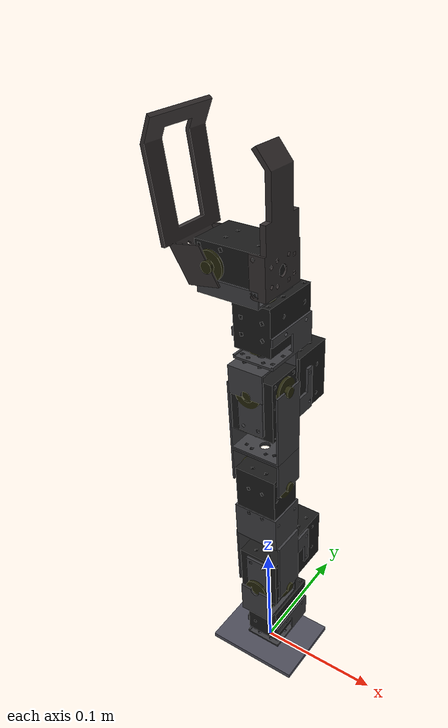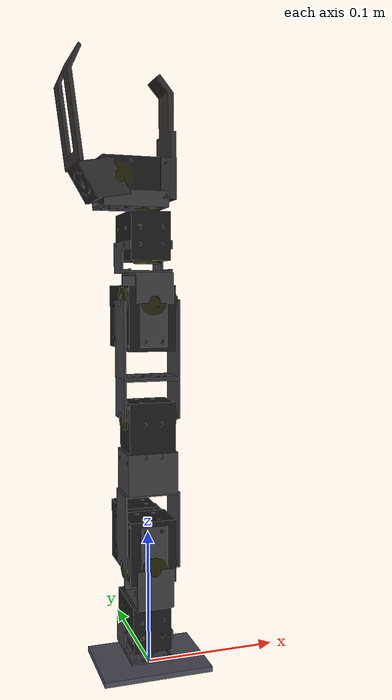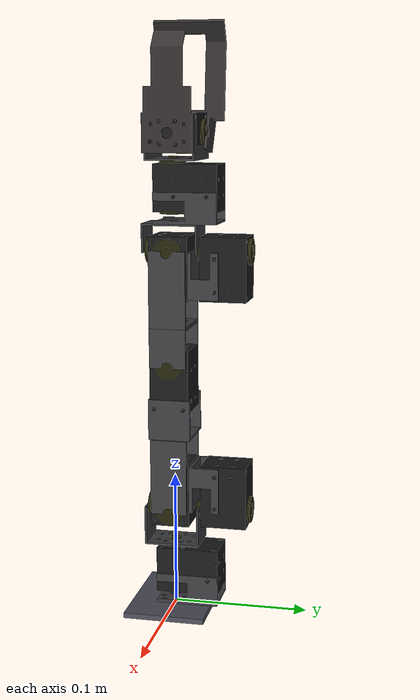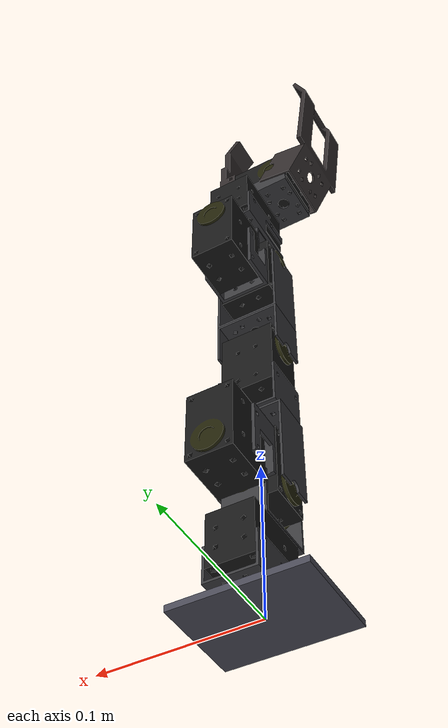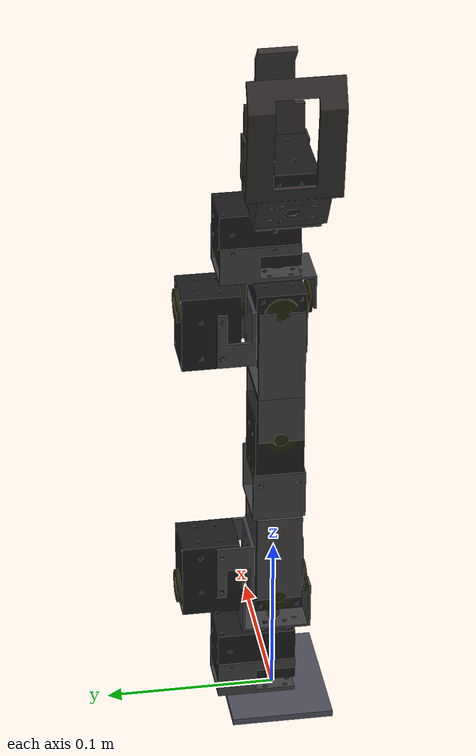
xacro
<?xml version="1.0"?>
<!-- XML namespaces -->
<robot xmlns:xi="http://www.w3.org/2001/XInclude"
       xmlns:gazebo="http://playerstage.sourceforge.net/gazebo/xmlschema/#gz"
       xmlns:model="http://playerstage.sourceforge.net/gazebo/xmlschema/#model"
       xmlns:sensor="http://playerstage.sourceforge.net/gazebo/xmlschema/#sensor"
       xmlns:body="http://playerstage.sourceforge.net/gazebo/xmlschema/#body"
       xmlns:geom="http://playerstage.sourceforge.net/gazebo/xmlschema/#geom"
       xmlns:joint="http://playerstage.sourceforge.net/gazebo/xmlschema/#joint"
       xmlns:interface="http://playerstage.sourceforge.net/gazebo/xmlschema/#interface"
       xmlns:rendering="http://playerstage.sourceforge.net/gazebo/xmlschema/#rendering"
       xmlns:renderable="http://playerstage.sourceforge.net/gazebo/xmlschema/#renderable"
       xmlns:controller="http://playerstage.sourceforge.net/gazebo/xmlschema/#controller"
       xmlns:physics="http://playerstage.sourceforge.net/gazebo/xmlschema/#physics"
       xmlns:xacro="http://ros.org/wiki/xacro"
       name="FIXED_ARM" >
  <xacro:include filename="$(find robot_assembler)/gazebo/gazebo_plugins.xacro" />
  <xacro:include filename="$(find robot_assembler)/sample/FIXED_ARM.urdf" />
</robot>

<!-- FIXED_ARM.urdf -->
<!-- This file was generated by robot assembler -->
<robot name="FIXED_ARM"
       xmlns:xi="http://www.w3.org/2001/XInclude"
       xmlns:gazebo="http://playerstage.sourceforge.net/gazebo/xmlschema/#gz"
       xmlns:model="http://playerstage.sourceforge.net/gazebo/xmlschema/#model"
       xmlns:sensor="http://playerstage.sourceforge.net/gazebo/xmlschema/#sensor"
       xmlns:body="http://playerstage.sourceforge.net/gazebo/xmlschema/#body"
       xmlns:geom="http://playerstage.sourceforge.net/gazebo/xmlschema/#geom"
       xmlns:joint="http://playerstage.sourceforge.net/gazebo/xmlschema/#joint"
       xmlns:interface="http://playerstage.sourceforge.net/gazebo/xmlschema/#interface"
       xmlns:rendering="http://playerstage.sourceforge.net/gazebo/xmlschema/#rendering"
       xmlns:renderable="http://playerstage.sourceforge.net/gazebo/xmlschema/#renderable"
       xmlns:controller="http://playerstage.sourceforge.net/gazebo/xmlschema/#controller"
       xmlns:physics="http://playerstage.sourceforge.net/gazebo/xmlschema/#physics"
       xmlns:xacro="http://www.ros.org/wiki/xacro">
  <xacro:macro name="gazebo_link_reference" params="link_name mu1:=0.9 mu2:=0.9" >
    <gazebo reference="${link_name}">
      <mu1>${mu1}</mu1>
      <mu2>${mu2}</mu2>
    </gazebo>
  </xacro:macro>
  <xacro:macro name="gazebo_transmission" params="joint_name" >
    <transmission name="${joint_name}_trans">
      <type>transmission_interface/SimpleTransmission</type>
      <joint name="${joint_name}">
        <hardwareInterface>hardware_interface/VelocityJointInterface</hardwareInterface>
      </joint>
      <actuator name="${joint_name}_motor">
        <hardwareInterface>hardware_interface/VelocityJointInterface</hardwareInterface>
        <mechanicalReduction>1</mechanicalReduction>
      </actuator>
    </transmission>
  </xacro:macro>

  <xacro:gazebo_link_reference link_name="BASE" />
  <link name="BASE">
  <inertial>
     <mass value="100.12"/>
     <origin rpy="0 0 0" xyz="-1.443271e-19 1.438274e-05 0.002031"/>
     <inertia ixx="10.0001" ixy="1.731926e-19" ixz="4.433066e-19" iyy="10.0001" iyz="-3.739513e-05" izz="10.0"/>
  </inertial>
  <visual>
     <origin xyz="0.000000 0.000000 0.000000" rpy="0.00000000 -0.00000000 0.00000000"/>
     <geometry>
     <mesh filename="package://robot_assembler/meshes/foot-plate.dae" scale="1.000000 1.000000 1.000000"/>
     </geometry>
  </visual>
  <collision>
     <origin xyz="0.000000 0.000000 0.000000" rpy="0.00000000 -0.00000000 0.00000000"/>
     <geometry>
     <mesh filename="package://robot_assembler/meshes/foot-plate.dae" scale="1.000000 1.000000 1.000000"/>
     </geometry>
  </collision>
  <visual>
     <origin xyz="0.000000 0.000000 0.004000" rpy="3.14159265 -0.00000000 0.00000000"/>
     <geometry>
     <mesh filename="package://robot_assembler/meshes/fr12_s103_a.dae" scale="1.000000 1.000000 1.000000"/>
     </geometry>
  </visual>
  <collision>
     <origin xyz="0.000000 0.000000 0.004000" rpy="3.14159265 -0.00000000 0.00000000"/>
     <geometry>
     <mesh filename="package://robot_assembler/meshes/fr12_s103_a.dae" scale="1.000000 1.000000 1.000000"/>
     </geometry>
  </collision>
  <visual>
     <origin xyz="-0.000000 0.000000 0.029500" rpy="0.00000000 0.00000000 -3.14159265"/>
     <geometry>
     <mesh filename="package://robot_assembler/meshes/xm430_dynamixel.dae" scale="1.000000 1.000000 1.000000"/>
     </geometry>
  </visual>
  <collision>
     <origin xyz="-0.000000 0.000000 0.029500" rpy="0.00000000 0.00000000 -3.14159265"/>
     <geometry>
     <mesh filename="package://robot_assembler/meshes/xm430_dynamixel.dae" scale="1.000000 1.000000 1.000000"/>
     </geometry>
  </collision>
  </link>
  <xacro:gazebo_link_reference link_name="LINK0" />
  <link name="LINK0">
  <inertial>
     <mass value="0.015"/>
     <origin rpy="0 0 0" xyz="-1.953584e-17 3.484759e-19 0.01455"/>
     <inertia ixx="1.969763e-06" ixy="-6.618208e-22" ixz="-1.400051e-21" iyy="3.159763e-06" iyz="6.539791e-23" izz="3.012500e-06"/>
  </inertial>
  <visual>
     <origin xyz="-0.000000 -0.000000 0.028000" rpy="-1.57079633 0.00000000 -1.57079633"/>
     <geometry>
     <mesh filename="package://robot_assembler/meshes/fr12_h101.dae" scale="1.000000 1.000000 1.000000"/>
     </geometry>
  </visual>
  <collision>
     <origin xyz="-0.000000 -0.000000 0.028000" rpy="-1.57079633 0.00000000 -1.57079633"/>
     <geometry>
     <mesh filename="package://robot_assembler/meshes/fr12_h101.dae" scale="1.000000 1.000000 1.000000"/>
     </geometry>
  </collision>
  </link>
  <xacro:gazebo_link_reference link_name="LINK1" />
  <link name="LINK1">
  <inertial>
     <mass value="0.228"/>
     <origin rpy="0 0 0" xyz="-0.000658 -0.012202 0.003807"/>
     <inertia ixx="0.000153" ixy="3.026316e-08" ixz="2.519013e-06" iyy="0.000136" iyz="-8.800526e-07" izz="6.231353e-05"/>
  </inertial>
  <visual>
     <origin xyz="-0.000000 -0.000000 -0.019000" rpy="0.00000000 -0.00000000 0.00000000"/>
     <geometry>
     <mesh filename="package://robot_assembler/meshes/xm430_dynamixel.dae" scale="1.000000 1.000000 1.000000"/>
     </geometry>
  </visual>
  <collision>
     <origin xyz="-0.000000 -0.000000 -0.019000" rpy="0.00000000 -0.00000000 0.00000000"/>
     <geometry>
     <mesh filename="package://robot_assembler/meshes/xm430_dynamixel.dae" scale="1.000000 1.000000 1.000000"/>
     </geometry>
  </collision>
  <visual>
     <origin xyz="-0.000000 -0.000000 -0.016000" rpy="1.57079633 0.00000000 0.00000000"/>
     <geometry>
     <mesh filename="package://robot_assembler/meshes/fr12_x102.dae" scale="1.000000 1.000000 1.000000"/>
     </geometry>
  </visual>
  <collision>
     <origin xyz="-0.000000 -0.000000 -0.016000" rpy="1.57079633 0.00000000 0.00000000"/>
     <geometry>
     <mesh filename="package://robot_assembler/meshes/fr12_x102.dae" scale="1.000000 1.000000 1.000000"/>
     </geometry>
  </collision>
  <visual>
     <origin xyz="-0.000000 0.000000 0.020600" rpy="-1.03831454 -1.57079633 1.03831454"/>
     <geometry>
     <mesh filename="package://robot_assembler/meshes/xm430_dynamixel.dae" scale="1.000000 1.000000 1.000000"/>
     </geometry>
  </visual>
  <collision>
     <origin xyz="-0.000000 0.000000 0.020600" rpy="-1.03831454 -1.57079633 1.03831454"/>
     <geometry>
     <mesh filename="package://robot_assembler/meshes/xm430_dynamixel.dae" scale="1.000000 1.000000 1.000000"/>
     </geometry>
  </collision>
  <visual>
     <origin xyz="-0.000000 0.000000 0.034850" rpy="1.57079633 -0.00000000 0.00000000"/>
     <geometry>
     <mesh filename="package://robot_assembler/meshes/hr12_f101.dae" scale="1.000000 1.000000 1.000000"/>
     </geometry>
  </visual>
  <collision>
     <origin xyz="-0.000000 0.000000 0.034850" rpy="1.57079633 -0.00000000 0.00000000"/>
     <geometry>
     <mesh filename="package://robot_assembler/meshes/hr12_f101.dae" scale="1.000000 1.000000 1.000000"/>
     </geometry>
  </collision>
  </link>
  <xacro:gazebo_link_reference link_name="LINK2" />
  <link name="LINK2">
  <inertial>
     <mass value="0.138"/>
     <origin rpy="0 0 0" xyz="-3.260870e-05 -0.084159 -0.017913"/>
     <inertia ixx="0.000131" ixy="6.371739e-08" ixz="-4.891304e-09" iyy="2.835168e-05" iyz="2.098587e-06" izz="0.000124"/>
  </inertial>
  <visual>
     <origin xyz="0.000000 0.000000 -0.019000" rpy="0.00000000 1.57079633 -3.14159265"/>
     <geometry>
     <mesh filename="package://robot_assembler/meshes/fr12_h103.dae" scale="1.000000 1.000000 1.000000"/>
     </geometry>
  </visual>
  <collision>
     <origin xyz="0.000000 0.000000 -0.019000" rpy="0.00000000 1.57079633 -3.14159265"/>
     <geometry>
     <mesh filename="package://robot_assembler/meshes/fr12_h103.dae" scale="1.000000 1.000000 1.000000"/>
     </geometry>
  </collision>
  <visual>
     <origin xyz="0.000000 -0.055000 -0.019000" rpy="-1.57079633 0.00000000 -0.00000000"/>
     <geometry>
     <mesh filename="package://robot_assembler/meshes/fr12_x103.dae" scale="1.000000 1.000000 1.000000"/>
     </geometry>
  </visual>
  <collision>
     <origin xyz="0.000000 -0.055000 -0.019000" rpy="-1.57079633 0.00000000 -0.00000000"/>
     <geometry>
     <mesh filename="package://robot_assembler/meshes/fr12_x103.dae" scale="1.000000 1.000000 1.000000"/>
     </geometry>
  </collision>
  <visual>
     <origin xyz="0.000000 -0.110150 -0.019000" rpy="-0.00000000 0.00000000 3.14159265"/>
     <geometry>
     <mesh filename="package://robot_assembler/meshes/xm430_dynamixel.dae" scale="1.000000 1.000000 1.000000"/>
     </geometry>
  </visual>
  <collision>
     <origin xyz="0.000000 -0.110150 -0.019000" rpy="-0.00000000 0.00000000 3.14159265"/>
     <geometry>
     <mesh filename="package://robot_assembler/meshes/xm430_dynamixel.dae" scale="1.000000 1.000000 1.000000"/>
     </geometry>
  </collision>
  </link>
  <xacro:gazebo_link_reference link_name="LINK3" />
  <link name="LINK3">
  <inertial>
     <mass value="0.035"/>
     <origin rpy="0 0 0" xyz="2.956365e-17 0.037793 -0.019"/>
     <inertia ixx="2.398520e-05" ixy="-2.377463e-20" ixz="-3.875419e-21" iyy="7.029167e-06" iyz="5.681579e-21" izz="2.676187e-05"/>
  </inertial>
  <visual>
     <origin xyz="0.000000 0.000000 -0.019000" rpy="0.07059318 1.57079633 0.07059318"/>
     <geometry>
     <mesh filename="package://robot_assembler/meshes/fr12_h101.dae" scale="1.000000 1.000000 1.000000"/>
     </geometry>
  </visual>
  <collision>
     <origin xyz="0.000000 0.000000 -0.019000" rpy="0.07059318 1.57079633 0.07059318"/>
     <geometry>
     <mesh filename="package://robot_assembler/meshes/fr12_h101.dae" scale="1.000000 1.000000 1.000000"/>
     </geometry>
  </collision>
  <visual>
     <origin xyz="0.000000 0.083000 -0.019000" rpy="2.87954722 1.57079633 -0.26204543"/>
     <geometry>
     <mesh filename="package://robot_assembler/meshes/fr12_h103.dae" scale="1.000000 1.000000 1.000000"/>
     </geometry>
  </visual>
  <collision>
     <origin xyz="0.000000 0.083000 -0.019000" rpy="2.87954722 1.57079633 -0.26204543"/>
     <geometry>
     <mesh filename="package://robot_assembler/meshes/fr12_h103.dae" scale="1.000000 1.000000 1.000000"/>
     </geometry>
  </collision>
  </link>
  <xacro:gazebo_link_reference link_name="LINK4" />
  <link name="LINK4">
  <inertial>
     <mass value="0.228"/>
     <origin rpy="0 0 0" xyz="0.016793 -0.012202 -0.018342"/>
     <inertia ixx="6.231353e-05" ixy="8.800526e-07" ixz="2.519013e-06" iyy="0.000136" iyz="-3.026316e-08" izz="0.000153"/>
  </inertial>
  <visual>
     <origin xyz="0.000000 0.000000 -0.019000" rpy="0.00000000 -0.00000000 -0.00000000"/>
     <geometry>
     <mesh filename="package://robot_assembler/meshes/xm430_dynamixel.dae" scale="1.000000 1.000000 1.000000"/>
     </geometry>
  </visual>
  <collision>
     <origin xyz="0.000000 0.000000 -0.019000" rpy="0.00000000 -0.00000000 -0.00000000"/>
     <geometry>
     <mesh filename="package://robot_assembler/meshes/xm430_dynamixel.dae" scale="1.000000 1.000000 1.000000"/>
     </geometry>
  </collision>
  <visual>
     <origin xyz="-0.014250 0.000000 -0.019000" rpy="1.83704838 -1.57079633 -0.26625205"/>
     <geometry>
     <mesh filename="package://robot_assembler/meshes/hr12_f101.dae" scale="1.000000 1.000000 1.000000"/>
     </geometry>
  </visual>
  <collision>
     <origin xyz="-0.014250 0.000000 -0.019000" rpy="1.83704838 -1.57079633 -0.26625205"/>
     <geometry>
     <mesh filename="package://robot_assembler/meshes/hr12_f101.dae" scale="1.000000 1.000000 1.000000"/>
     </geometry>
  </collision>
  <visual>
     <origin xyz="0.036600 0.000000 -0.019000" rpy="-2.11121583 -1.57079633 -2.60117315"/>
     <geometry>
     <mesh filename="package://robot_assembler/meshes/fr12_x102.dae" scale="1.000000 1.000000 1.000000"/>
     </geometry>
  </visual>
  <collision>
     <origin xyz="0.036600 0.000000 -0.019000" rpy="-2.11121583 -1.57079633 -2.60117315"/>
     <geometry>
     <mesh filename="package://robot_assembler/meshes/fr12_x102.dae" scale="1.000000 1.000000 1.000000"/>
     </geometry>
  </collision>
  <visual>
     <origin xyz="0.039600 0.000000 -0.019000" rpy="2.61807145 -1.57079633 -2.61807145"/>
     <geometry>
     <mesh filename="package://robot_assembler/meshes/xm430_dynamixel.dae" scale="1.000000 1.000000 1.000000"/>
     </geometry>
  </visual>
  <collision>
     <origin xyz="0.039600 0.000000 -0.019000" rpy="2.61807145 -1.57079633 -2.61807145"/>
     <geometry>
     <mesh filename="package://robot_assembler/meshes/xm430_dynamixel.dae" scale="1.000000 1.000000 1.000000"/>
     </geometry>
  </collision>
  </link>
  <xacro:gazebo_link_reference link_name="LINK5" />
  <link name="LINK5">
  <inertial>
     <mass value="0.135"/>
     <origin rpy="0 0 0" xyz="-8.085089e-17 0.040606 0.009833"/>
     <inertia ixx="5.790463e-05" ixy="9.869592e-20" ixz="3.170078e-21" iyy="3.497750e-05" iyz="4.888000e-06" izz="4.397463e-05"/>
  </inertial>
  <visual>
     <origin xyz="0.000000 0.000000 0.020500" rpy="0.44051066 1.57079633 0.44051066"/>
     <geometry>
     <mesh filename="package://robot_assembler/meshes/fr12_h101s.dae" scale="1.000000 1.000000 1.000000"/>
     </geometry>
  </visual>
  <collision>
     <origin xyz="0.000000 0.000000 0.020500" rpy="0.44051066 1.57079633 0.44051066"/>
     <geometry>
     <mesh filename="package://robot_assembler/meshes/fr12_h101s.dae" scale="1.000000 1.000000 1.000000"/>
     </geometry>
  </collision>
  <visual>
     <origin xyz="-0.000000 0.020000 0.020500" rpy="1.57079633 -0.00000000 0.00000000"/>
     <geometry>
     <mesh filename="package://robot_assembler/meshes/fr12_s103_a.dae" scale="1.000000 1.000000 1.000000"/>
     </geometry>
  </visual>
  <collision>
     <origin xyz="-0.000000 0.020000 0.020500" rpy="1.57079633 -0.00000000 0.00000000"/>
     <geometry>
     <mesh filename="package://robot_assembler/meshes/fr12_s103_a.dae" scale="1.000000 1.000000 1.000000"/>
     </geometry>
  </collision>
  <visual>
     <origin xyz="-0.000000 0.045500 0.020500" rpy="1.57079633 0.00000000 -3.14159265"/>
     <geometry>
     <mesh filename="package://robot_assembler/meshes/xm430_dynamixel.dae" scale="1.000000 1.000000 1.000000"/>
     </geometry>
  </visual>
  <collision>
     <origin xyz="-0.000000 0.045500 0.020500" rpy="1.57079633 0.00000000 -3.14159265"/>
     <geometry>
     <mesh filename="package://robot_assembler/meshes/xm430_dynamixel.dae" scale="1.000000 1.000000 1.000000"/>
     </geometry>
  </collision>
  </link>
  <xacro:gazebo_link_reference link_name="LINK6" />
  <link name="LINK6">
  <inertial>
     <mass value="0.148"/>
     <origin rpy="0 0 0" xyz="0.00748 -0.000689 0.025936"/>
     <inertia ixx="7.515967e-05" ixy="4.610676e-07" ixz="1.693519e-05" iyy="8.733643e-05" iyz="-6.564527e-07" izz="5.476682e-05"/>
  </inertial>
  <visual>
     <origin xyz="0.024000 0.000000 0.019500" rpy="-3.14159265 0.00000000 1.57079633"/>
     <geometry>
     <mesh filename="package://robot_assembler/meshes/fr12_s101.dae" scale="1.000000 1.000000 1.000000"/>
     </geometry>
  </visual>
  <collision>
     <origin xyz="0.024000 0.000000 0.019500" rpy="-3.14159265 0.00000000 1.57079633"/>
     <geometry>
     <mesh filename="package://robot_assembler/meshes/fr12_s101.dae" scale="1.000000 1.000000 1.000000"/>
     </geometry>
  </collision>
  <visual>
     <origin xyz="0.024000 0.000000 0.019500" rpy="-0.39234014 -1.57079633 -1.17845618"/>
     <geometry>
     <mesh filename="package://robot_assembler/meshes/xm430_dynamixel.dae" scale="1.000000 1.000000 1.000000"/>
     </geometry>
  </visual>
  <collision>
     <origin xyz="0.024000 0.000000 0.019500" rpy="-0.39234014 -1.57079633 -1.17845618"/>
     <geometry>
     <mesh filename="package://robot_assembler/meshes/xm430_dynamixel.dae" scale="1.000000 1.000000 1.000000"/>
     </geometry>
  </collision>
  <visual>
     <origin xyz="0.003000 -0.000000 0.019500" rpy="1.57079633 -0.00000000 -1.57079633"/>
     <geometry>
     <mesh filename="package://robot_assembler/meshes/fr12_e170.dae" scale="1.000000 1.000000 1.000000"/>
     </geometry>
  </visual>
  <collision>
     <origin xyz="0.003000 -0.000000 0.019500" rpy="1.57079633 -0.00000000 -1.57079633"/>
     <geometry>
     <mesh filename="package://robot_assembler/meshes/fr12_e170.dae" scale="1.000000 1.000000 1.000000"/>
     </geometry>
  </collision>
  </link>
  <xacro:gazebo_link_reference link_name="LINK7" />
  <link name="LINK7">
  <inertial>
     <mass value="0.035"/>
     <origin rpy="0 0 0" xyz="0.023397 0.018542 -0.019"/>
     <inertia ixx="1.643493e-05" ixy="-8.139500e-06" ixz="-5.964431e-21" iyy="2.583362e-05" iyz="-1.010962e-21" izz="2.525856e-05"/>
  </inertial>
  <visual>
     <origin xyz="0.000000 0.000000 -0.019000" rpy="0.38930895 1.57079633 0.91290772"/>
     <geometry>
     <mesh filename="package://robot_assembler/meshes/fr12_e171.dae" scale="1.000000 1.000000 1.000000"/>
     </geometry>
  </visual>
  <collision>
     <origin xyz="0.000000 0.000000 -0.019000" rpy="0.38930895 1.57079633 0.91290772"/>
     <geometry>
     <mesh filename="package://robot_assembler/meshes/fr12_e171.dae" scale="1.000000 1.000000 1.000000"/>
     </geometry>
  </collision>
  </link>
  <xacro:gazebo_transmission joint_name="JOINT0" />
  <joint name="JOINT0" type="revolute">
     <parent link="BASE"/>
     <child link="LINK0"/>
     <origin xyz="-0.000000 0.000000 0.048500" rpy="0.00000000 0.00000000 -3.14159265"/>
     <axis xyz="0 0 1"/>
     <limit effort="200" lower="-3.14159" upper="3.14159" velocity="40"/>
  </joint>
  <xacro:gazebo_transmission joint_name="JOINT1" />
  <joint name="JOINT1" type="revolute">
     <parent link="LINK0"/>
     <child link="LINK1"/>
     <origin xyz="-0.000000 -0.020500 0.028000" rpy="-1.57079633 -0.00000000 0.00000000"/>
     <axis xyz="0 0 1"/>
     <limit effort="200" lower="-3.14159" upper="3.14159" velocity="40"/>
  </joint>
  <xacro:gazebo_transmission joint_name="JOINT2" />
  <joint name="JOINT2" type="revolute">
     <parent link="LINK1"/>
     <child link="LINK2"/>
     <origin xyz="-0.019000 -0.000000 0.020600" rpy="-1.03831454 -1.57079633 1.03831454"/>
     <axis xyz="0 0 1"/>
     <limit effort="200" lower="-3.14159" upper="3.14159" velocity="40"/>
  </joint>
  <xacro:gazebo_transmission joint_name="JOINT3" />
  <joint name="JOINT3" type="revolute">
     <parent link="LINK2"/>
     <child link="LINK3"/>
     <origin xyz="0.000000 -0.110150 -0.000000" rpy="-0.00000000 0.00000000 3.14159265"/>
     <axis xyz="0 0 1"/>
     <limit effort="200" lower="-3.14159" upper="3.14159" velocity="40"/>
  </joint>
  <xacro:gazebo_transmission joint_name="JOINT4" />
  <joint name="JOINT4" type="revolute">
     <parent link="LINK3"/>
     <child link="LINK4"/>
     <origin xyz="0.000000 0.083000 -0.000000" rpy="-0.00000000 -0.00000000 0.00000000"/>
     <axis xyz="0 0 1"/>
     <limit effort="200" lower="-3.14159" upper="3.14159" velocity="40"/>
  </joint>
  <xacro:gazebo_transmission joint_name="JOINT5" />
  <joint name="JOINT5" type="revolute">
     <parent link="LINK4"/>
     <child link="LINK5"/>
     <origin xyz="0.020600 0.000000 -0.019000" rpy="2.61807145 -1.57079633 -2.61807145"/>
     <axis xyz="0 0 1"/>
     <limit effort="200" lower="-3.14159" upper="3.14159" velocity="40"/>
  </joint>
  <xacro:gazebo_transmission joint_name="JOINT6" />
  <joint name="JOINT6" type="revolute">
     <parent link="LINK5"/>
     <child link="LINK6"/>
     <origin xyz="-0.000000 0.064500 0.020500" rpy="1.57079633 0.00000000 -3.14159265"/>
     <axis xyz="0 0 1"/>
     <limit effort="200" lower="-3.14159" upper="3.14159" velocity="40"/>
  </joint>
  <xacro:gazebo_transmission joint_name="JOINT7" />
  <joint name="JOINT7" type="revolute">
     <parent link="LINK6"/>
     <child link="LINK7"/>
     <origin xyz="0.024000 0.019000 0.019500" rpy="-0.39234014 -1.57079633 -1.17845618"/>
     <axis xyz="0 0 1"/>
     <limit effort="200" lower="-3.14159" upper="3.14159" velocity="40"/>
  </joint>

  <!-- Gazebo plugin for ROS Control -->
  <gazebo>
    <plugin name="gazebo_ros_control" filename="libgazebo_ros_control.so">
      <robotNamespace>/</robotNamespace>
      <robotSimType>gazebo_ros_control/DefaultRobotHWSim</robotSimType>
    </plugin>
  </gazebo>
</robot>
